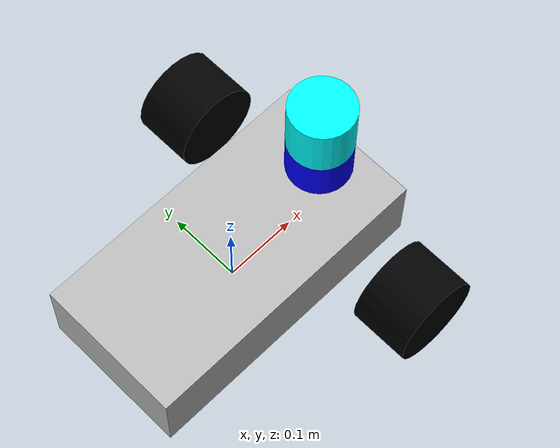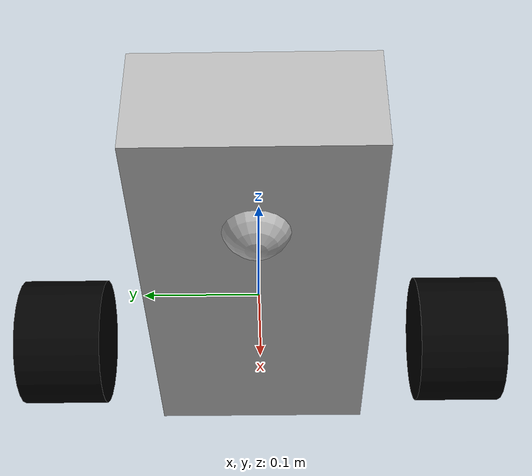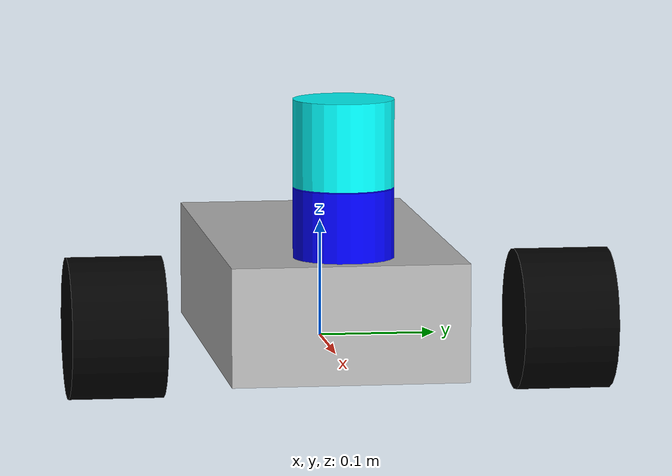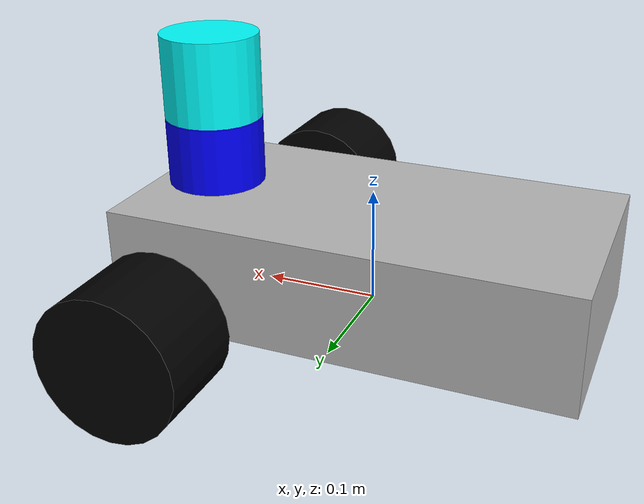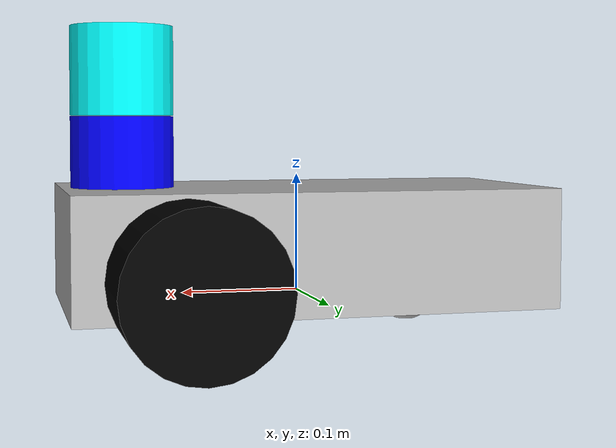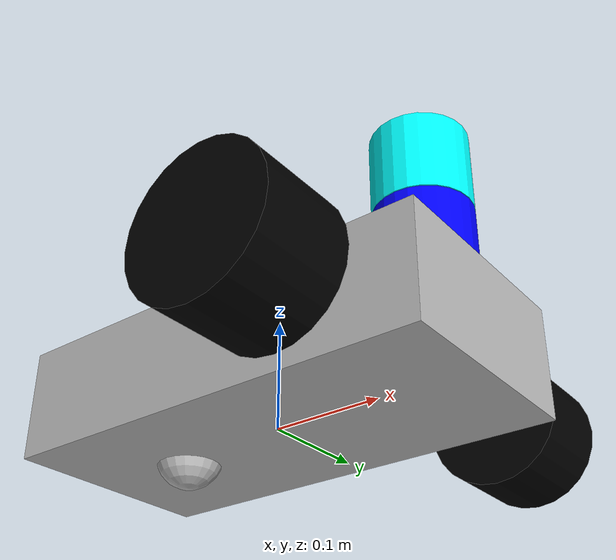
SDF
<!-- Reference : How to Simulate a Robot Using Gazebo and ROS 2 (https://automaticaddison.com/how-to-simulate-a-robot-using-gazebo-and-ros-2/#Launch_Your_Robot_and_Warehouse_Using_ROS_2) -->

<sdf version='1.5'>
    <model name='2WD_agent'>

        <!-- Define the model as a moving object -->
        <static>false</static>

        <!-- Rectangular base of the robot -->
        <link name='chassis'>

            <!-- Position of the center will be: -->

            <!-- Orientation of the center will be: -->
            <!-- Roll = 0 rad | Pitch = 0 rad | Yaw = 0 rad -->
            <pose>0 0 0.04 0 0 0</pose>

            <inertial>
                <mass>100.0</mass>
                <pose>0.0 0 0.1 0 0 0</pose>
                <inertia>
                    <ixx>0.5</ixx>
                    <iyy>1.0</iyy>
                    <izz>0.1</izz>
                </inertia>
            </inertial>

            <!-- [Base of 2WD Vehicle] -->
            <!-- Define the shape of collision area of base -->
            <collision name='collision'>
                <geometry>
                    <box>
                        <!-- Box-shaped collision area with 0.4m in length, 0.2m in width, and 0.1m in height -->
                        <size>0.4 0.2 0.1</size>
                    </box>
                </geometry>
            </collision>

            <!-- Define the visual representation of the base -->
            <visual name='visual'>
                <geometry>
                    <box>
                        <!-- Define visual shape of the base as box with same collision area -->
                        <size>0.4 0.2 0.1</size>
                    </box>
                </geometry>
            </visual>

            <!-- [Front Caster Wheel] -->
            <!-- Define the shape of collision area of caster wheel -->
            <collision name='caster_collision'>
                <pose>-0.1 0 -0.04 0 0 0</pose>
                <geometry>
                    <sphere>
                        <radius>0.03</radius>
                    </sphere>
                </geometry>

                <!-- Assign friction property to the wheel -->
                <surface>
                    <friction>
                        <ode>
                            <!-- Coefficients for friction -->
                            <mu>0</mu>
                            <mu2>0</mu2>
                            <!-- Force dependent slip -->
                            <slip1>1.0</slip1>
                            <slip2>1.0</slip2>
                        </ode>
                    </friction>
                </surface>
            </collision>

            <!-- Define visual shape of the caster wheel -->
            <visual name='caster_visual'>
                <pose>-0.1 0 -0.04 0 0 0</pose>
                <geometry>
                    <sphere>
                        <radius>0.03</radius>
                    </sphere>
                </geometry>
            </visual>
        </link>

        <!-- [Left Wheel] -->
        <link name='left_wheel'>
            <pose>0.12 0.19 0.03 0 1.5707 1.5707</pose>

            <collision name='collision'>
                <geometry>
                    <cylinder>
                        <radius>0.06</radius>
                        <length>0.08</length>
                    </cylinder>
                </geometry>
            </collision>

            <visual name='visual'>
                <geometry>
                    <cylinder>
                        <radius>0.06</radius>
                        <length>0.08</length>
                    </cylinder>
                </geometry>
                <material>
                    <ambient>0 0 0 1</ambient>
                </material>
            </visual>
        </link>

        <!-- [Left Wheel Motor/Joint] -->
        <joint type='revolute' name='left_wheel_hinge'>
            <pose>0 0 -0.03 0 0 0</pose>
            <parent>chassis</parent>
            <child>left_wheel</child>
            <axis>
                <xyz>0 0 1</xyz>
            </axis>
        </joint>

        <!-- [Right Wheel] -->
        <link name='right_wheel'>
            <pose>0.12 -0.19 0.03 0 1.5707 1.5707</pose>

            <collision name='collision'>
                <geometry>
                    <cylinder>
                        <radius>0.06</radius>
                        <length>0.08</length>
                    </cylinder>
                </geometry>
            </collision>

            <visual name='visual'>
                <geometry>
                    <cylinder>
                        <radius>0.06</radius>
                        <length>0.08</length>
                    </cylinder>
                </geometry>
                <material>
                    <ambient>0 0 0 1</ambient>
                </material>
            </visual>
        </link>

        <!-- [Right Wheel Motor/Joint] -->
        <joint type='revolute' name='right_wheel_hinge'>
            <pose>0 0 0.03 0 0 0</pose>
            <parent>chassis</parent>
            <child>right_wheel</child>
            <axis>
                <xyz>0 0 1</xyz>
            </axis>
        </joint>

        <!-- [LiDAR Sensor | Velodyne HDL 32] -->
        <link name='lidar_base'>

            <!-- Assign inertial property of LiDAR -->
            <inertial>
                <!-- Mass of LiDAR sensor in kg -->
                <mass>1.2</mass>
                <inertia>
                    <ixx>0.001087473</ixx>
                    <iyy>0.001087473</iyy>
                    <izz>0.001092437</izz>
                    <ixy>0</ixy>
                    <ixz>0</ixz>
                    <iyz>0</iyz>
                </inertia>
            </inertial>

            <!-- Position is towards the front of the robot -->
            <!-- LiDAR is mounted on the top -->
            <pose>0.15 0 0.12 0 0 0</pose>

            <collision name='base_collision'>
                <geometry>
                    <cylinder>
                        <!-- Radius and Length provided by Velodyne -->
                        <radius>0.04267</radius>
                        <length>0.05867</length>
                    </cylinder>
                </geometry>
            </collision>

            <visual name='base_visual'>
                <geometry>
                    <cylinder>
                        <!-- Radius and Length provided by Velodyne -->
                        <radius>0.04267</radius>
                        <length>0.05867</length>
                    </cylinder>
                </geometry>
                <material>
                    <ambient>0 0 1 1</ambient>
                </material>
            </visual>

        </link>

        <link name='lidar_top'>

            <!-- Assign inertial property of LiDAR -->
            <inertial>
                <!-- Mass of LiDAR sensor in kg -->
                <mass>0.1</mass>
                <inertia>
                    <ixx>0.000090623</ixx>
                    <iyy>0.000090623</iyy>
                    <izz>0.000091036</izz>
                    <ixy>0</ixy>
                    <ixz>0</ixz>
                    <iyz>0</iyz>
                </inertia>
            </inertial>

            <!-- Position is towards the front of the robot -->
            <!-- LiDAR is mounted on the top -->
            <pose>0.15 0 0.187 0 0 0</pose>

            <collision name='top_collision'>
                <geometry>
                    <cylinder>
                        <!-- Radius and Length provided by Velodyne -->
                        <radius>0.04267</radius>
                        <length>0.07357</length>
                    </cylinder>
                </geometry>
            </collision>

            <visual name='top_visual'>
                <geometry>
                    <cylinder>
                        <!-- Radius and Length provided by Velodyne -->
                        <radius>0.04267</radius>
                        <length>0.07357</length>
                    </cylinder>
                </geometry>
                <material>
                    <ambient>0 1 1 1</ambient>
                </material>
            </visual>

            <!-- Sensor data simulation of 3D LiDAR -->
            <sensor name='lidar_data' type='ray'>
                <pose>0 0 0.0175 0 0 0</pose>   <!-- Origin point of 3D LiDAR rays -->
                <always_on>1</always_on>        <!-- Decide whether sensor is to be updated at update rate -->
                <update_rate>30</update_rate>   <!-- Update rate of sensor [Hz] -->
                <visualize>true</visualize>     <!-- Visualization on/off in Gazebo GUI -->
                <ray>
                    <scan>
                        <horizontal>    <!-- Horizontal characteristics of 3D LiDAR -->
                            <samples>360</samples>          <!-- Number of rays in single horizontal laser scan -->
                            <resolution>1</resolution>      <!-- Number to be multiplied with samples -->
                            <min_angle>-3.14</min_angle>    <!-- Minimum angle of 3D LiDAR horizontal scan -->
                            <max_angle>3.14</max_angle>     <!-- Maximum angle of 3D LiDAR horizontal scan -->
                        </horizontal>
                        <vertical>      <!-- Vertical characteristics of 3D LiDAR -->
                            <samples>32</samples>               <!-- Number of rays in single vertical laser scan -->
                            <resolution>1</resolution>          <!-- Number to be multiplied with samples -->
                            <min_angle>0.04308</min_angle>      <!-- 2.47 degree in rad -->
                            <max_angle>-0.24492</max_angle>     <!-- -14.04 degree in rad -->
                        </vertical>
                    </scan>
                    <range>     <!-- Sensor range characteristics -->
                        <min>0.1</min>                  <!-- Minimum range of single laser ray -->
                        <max>1.2</max>                  <!-- Maximum range of single laser ray -->
                        <resolution>0.05</resolution>   <!-- Linear resolution of each ray -->
                    </range>
                    <noise>     <!-- Sensor Noise characteristics -->
                        <type>gaussian</type>       <!-- Sensor noise type -->
                        <mean>0</mean>              <!-- Mean of gaussian sensor noise -->
                        <stddev>3</stddev>          <!-- Standard deviation of gaussian sensor noise -->
                    </noise>
                </ray>

                <!-- ROS2 plugin for LiDAR sensor data topic publish -->
                <plugin name='lidar_pub' filename='libgazebo_ros_ray_sensor.so'>
                    <ros>
                        <namespace>/agent_gazebo</namespace>                        <!-- Namespace for current lidar sensor model -->
                        <argument>--ros-args --remap ~/out:=scan</argument>         <!-- Name mapping for sensor output -->
                    </ros>
                    <output_type>sensor_msgs/LaserScan</output_type>        <!-- Topic type for lidar data topic -->
                </plugin>
            </sensor>

        </link>

        <joint type='revolute' name='lidar_joint'>
            <pose>0 0 -0.035 0 0 0</pose>
            <parent>lidar_base</parent>
            <child>lidar_top</child>
            <axis>
                <xyz>0 0 1</xyz>
            </axis>
        </joint>

        <joint type='fixed' name='lidar_base_joint'>
            <parent>chassis</parent>
            <child>lidar_base</child>
        </joint>

        <!-- ROS2 plugin for 2WD differential drive joint control -->
        <plugin name='diff_drive' filename='libgazebo_ros_diff_drive.so'>
            <ros>
                <namespace>/agent_gazebo</namespace>        <!-- Namespace for current model's diff drive plugin topics -->
                <argument>cmd_vel:=cmd_vel</argument>       <!-- Name mapping for Linear & Angular Velocity Control Topics [geometry_msgs/msg/Twist] -->
                <argument>odom:=odom</argument>             <!-- Name mapping for Odometry Topics [nav_msgs/msg/Odometry] -->
            </ros>

            <!-- Wheels -->
            <left_joint>left_wheel_hinge</left_joint>       <!-- Name of joint / motor for left wheel -->
            <right_joint>right_wheel_hinge</right_joint>    <!-- Name of joint / motor for right wheel -->

            <!-- Kinematics -->
            <wheel_separation>0.26</wheel_separation>   <!-- Distance between the center of one wheel to the other [m] -->
            <wheel_diameter>0.2</wheel_diameter>        <!-- Diameter of wheels -->

            <!-- Limits -->
            <max_wheel_torque>20</max_wheel_torque>                 <!-- Max torque to be produced by wheel revolution [Nm] -->
            <max_wheel_acceleration>1.0</max_wheel_acceleration>    <!-- Max wheel acceleration for revolution [rad/s^2] -->

            <!-- ROS2 Message Output Setting -->
            <publish_odom>true</publish_odom>               <!-- Decide whether to publish odometry topic -->
            <publish_odom_tf>true</publish_odom_tf>         <!-- Decide whether to publish odometry tf -->
            <publish_wheel_tf>true</publish_wheel_tf>       <!-- Decide whether to publish wheel tf -->

            <!-- Frame -->
            <odometry_frame>odom</odometry_frame>               <!-- Odometry frame name -->
            <robot_base_frame>chassis</robot_base_frame>        <!-- Model base link frame name -->
        </plugin>

        <plugin name='lidar_control' filename='libgazebo_ros_joint_state_publisher.so'>
            <joint_name>lidar_joint</joint_name>
        </plugin>

    </model>
</sdf>
